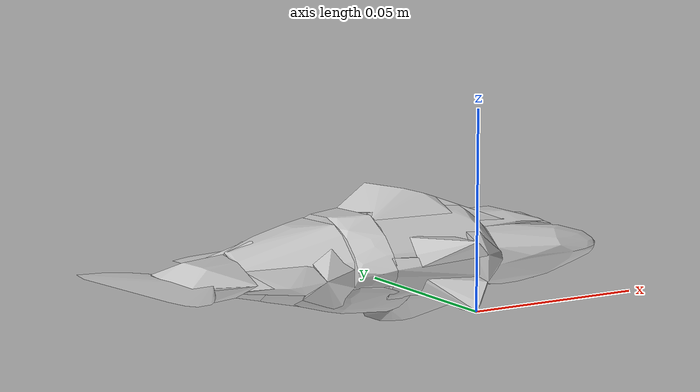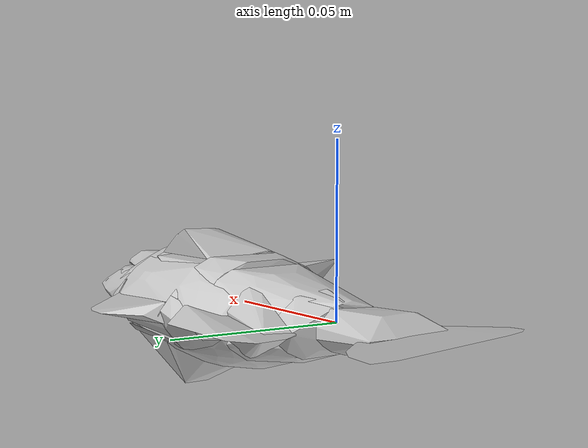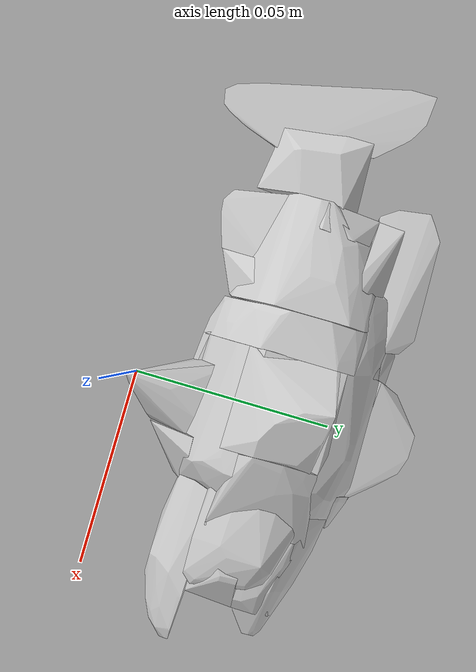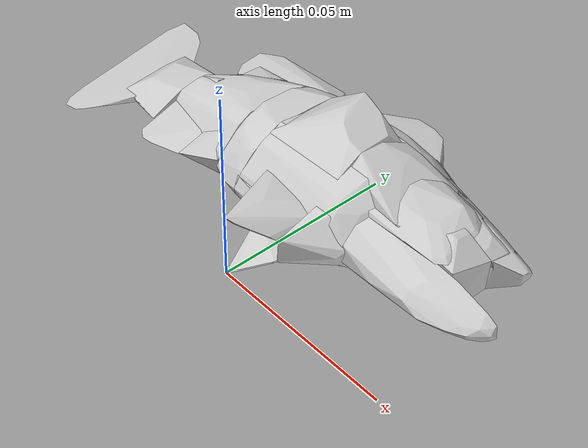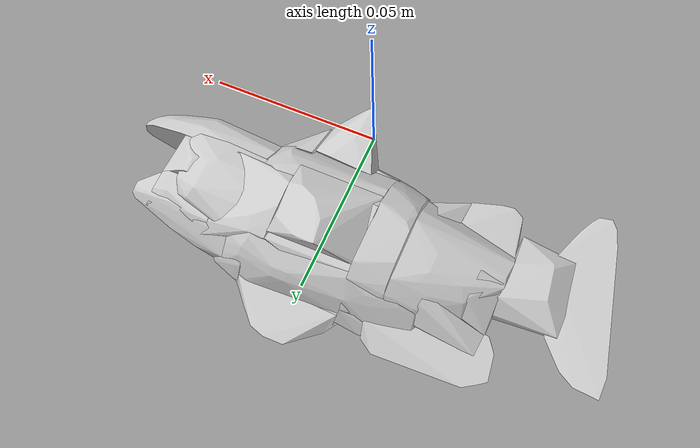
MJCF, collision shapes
<mujoco model="Efd0a302">
  <asset>
  <texture file="/Users/soroushnasiriany/code/robosuite-kitchen/robosuite/models/assets/textures/gray-felt.png" name="tex-Efd0a302" type="2d" />
  <material name="Efd0a302" reflectance="0.5" texrepeat="1 1" texture="tex-Efd0a302" texuniform="false" />
  <mesh file="visual/Efd0a30284addbd75429a46527d69a9a_0.obj" name="Efd0a30284addbd75429a46527d69a9a_0_vis" scale="0.004 0.004 0.004" /><mesh file="visual/Efd0a30284addbd75429a46527d69a9a_1.obj" name="Efd0a30284addbd75429a46527d69a9a_1_vis" scale="0.004 0.004 0.004" /><mesh file="visual/Efd0a30284addbd75429a46527d69a9a_2.obj" name="Efd0a30284addbd75429a46527d69a9a_2_vis" scale="0.004 0.004 0.004" /><mesh file="visual/Efd0a30284addbd75429a46527d69a9a_3.obj" name="Efd0a30284addbd75429a46527d69a9a_3_vis" scale="0.004 0.004 0.004" /><mesh file="visual/Efd0a30284addbd75429a46527d69a9a_4.obj" name="Efd0a30284addbd75429a46527d69a9a_4_vis" scale="0.004 0.004 0.004" /><mesh file="visual/Efd0a30284addbd75429a46527d69a9a_5.obj" name="Efd0a30284addbd75429a46527d69a9a_5_vis" scale="0.004 0.004 0.004" /><mesh file="visual/Efd0a30284addbd75429a46527d69a9a_6.obj" name="Efd0a30284addbd75429a46527d69a9a_6_vis" scale="0.004 0.004 0.004" /><mesh file="visual/Efd0a30284addbd75429a46527d69a9a_7.obj" name="Efd0a30284addbd75429a46527d69a9a_7_vis" scale="0.004 0.004 0.004" /><mesh file="visual/Efd0a30284addbd75429a46527d69a9a_8.obj" name="Efd0a30284addbd75429a46527d69a9a_8_vis" scale="0.004 0.004 0.004" /><mesh file="visual/Efd0a30284addbd75429a46527d69a9a_9.obj" name="Efd0a30284addbd75429a46527d69a9a_9_vis" scale="0.004 0.004 0.004" /><mesh file="visual/Efd0a30284addbd75429a46527d69a9a_10.obj" name="Efd0a30284addbd75429a46527d69a9a_10_vis" scale="0.004 0.004 0.004" /><mesh file="visual/Efd0a30284addbd75429a46527d69a9a_11.obj" name="Efd0a30284addbd75429a46527d69a9a_11_vis" scale="0.004 0.004 0.004" /><mesh file="visual/Efd0a30284addbd75429a46527d69a9a_12.obj" name="Efd0a30284addbd75429a46527d69a9a_12_vis" scale="0.004 0.004 0.004" /><mesh file="collision/efd0a30284addbd75429a46527d69a9a_collision_22.obj" name="efd0a30284addbd75429a46527d69a9a_collision_22._coll" scale="0.004 0.004 0.004" /><mesh file="collision/efd0a30284addbd75429a46527d69a9a_collision_23.obj" name="efd0a30284addbd75429a46527d69a9a_collision_23._coll" scale="0.004 0.004 0.004" /><mesh file="collision/efd0a30284addbd75429a46527d69a9a_collision_21.obj" name="efd0a30284addbd75429a46527d69a9a_collision_21._coll" scale="0.004 0.004 0.004" /><mesh file="collision/efd0a30284addbd75429a46527d69a9a_collision_20.obj" name="efd0a30284addbd75429a46527d69a9a_collision_20._coll" scale="0.004 0.004 0.004" /><mesh file="collision/efd0a30284addbd75429a46527d69a9a_collision_24.obj" name="efd0a30284addbd75429a46527d69a9a_collision_24._coll" scale="0.004 0.004 0.004" /><mesh file="collision/efd0a30284addbd75429a46527d69a9a_collision_30.obj" name="efd0a30284addbd75429a46527d69a9a_collision_30._coll" scale="0.004 0.004 0.004" /><mesh file="collision/efd0a30284addbd75429a46527d69a9a_collision_18.obj" name="efd0a30284addbd75429a46527d69a9a_collision_18._coll" scale="0.004 0.004 0.004" /><mesh file="collision/efd0a30284addbd75429a46527d69a9a_collision_19.obj" name="efd0a30284addbd75429a46527d69a9a_collision_19._coll" scale="0.004 0.004 0.004" /><mesh file="collision/efd0a30284addbd75429a46527d69a9a_collision_31.obj" name="efd0a30284addbd75429a46527d69a9a_collision_31._coll" scale="0.004 0.004 0.004" /><mesh file="collision/efd0a30284addbd75429a46527d69a9a_collision_25.obj" name="efd0a30284addbd75429a46527d69a9a_collision_25._coll" scale="0.004 0.004 0.004" /><mesh file="collision/efd0a30284addbd75429a46527d69a9a_collision_27.obj" name="efd0a30284addbd75429a46527d69a9a_collision_27._coll" scale="0.004 0.004 0.004" /><mesh file="collision/efd0a30284addbd75429a46527d69a9a_collision_26.obj" name="efd0a30284addbd75429a46527d69a9a_collision_26._coll" scale="0.004 0.004 0.004" /><mesh file="collision/efd0a30284addbd75429a46527d69a9a_collision_0.obj" name="efd0a30284addbd75429a46527d69a9a_collision_0._coll" scale="0.004 0.004 0.004" /><mesh file="collision/efd0a30284addbd75429a46527d69a9a_collision_1.obj" name="efd0a30284addbd75429a46527d69a9a_collision_1._coll" scale="0.004 0.004 0.004" /><mesh file="collision/efd0a30284addbd75429a46527d69a9a_collision_3.obj" name="efd0a30284addbd75429a46527d69a9a_collision_3._coll" scale="0.004 0.004 0.004" /><mesh file="collision/efd0a30284addbd75429a46527d69a9a_collision_2.obj" name="efd0a30284addbd75429a46527d69a9a_collision_2._coll" scale="0.004 0.004 0.004" /><mesh file="collision/efd0a30284addbd75429a46527d69a9a_collision_6.obj" name="efd0a30284addbd75429a46527d69a9a_collision_6._coll" scale="0.004 0.004 0.004" /><mesh file="collision/efd0a30284addbd75429a46527d69a9a_collision_7.obj" name="efd0a30284addbd75429a46527d69a9a_collision_7._coll" scale="0.004 0.004 0.004" /><mesh file="collision/efd0a30284addbd75429a46527d69a9a_collision_5.obj" name="efd0a30284addbd75429a46527d69a9a_collision_5._coll" scale="0.004 0.004 0.004" /><mesh file="collision/efd0a30284addbd75429a46527d69a9a_collision_4.obj" name="efd0a30284addbd75429a46527d69a9a_collision_4._coll" scale="0.004 0.004 0.004" /><mesh file="collision/efd0a30284addbd75429a46527d69a9a_collision_9.obj" name="efd0a30284addbd75429a46527d69a9a_collision_9._coll" scale="0.004 0.004 0.004" /><mesh file="collision/efd0a30284addbd75429a46527d69a9a_collision_8.obj" name="efd0a30284addbd75429a46527d69a9a_collision_8._coll" scale="0.004 0.004 0.004" /><mesh file="collision/efd0a30284addbd75429a46527d69a9a_collision_17.obj" name="efd0a30284addbd75429a46527d69a9a_collision_17._coll" scale="0.004 0.004 0.004" /><mesh file="collision/efd0a30284addbd75429a46527d69a9a_collision_16.obj" name="efd0a30284addbd75429a46527d69a9a_collision_16._coll" scale="0.004 0.004 0.004" /><mesh file="collision/efd0a30284addbd75429a46527d69a9a_collision_28.obj" name="efd0a30284addbd75429a46527d69a9a_collision_28._coll" scale="0.004 0.004 0.004" /><mesh file="collision/efd0a30284addbd75429a46527d69a9a_collision_14.obj" name="efd0a30284addbd75429a46527d69a9a_collision_14._coll" scale="0.004 0.004 0.004" /><mesh file="collision/efd0a30284addbd75429a46527d69a9a_collision_15.obj" name="efd0a30284addbd75429a46527d69a9a_collision_15._coll" scale="0.004 0.004 0.004" /><mesh file="collision/efd0a30284addbd75429a46527d69a9a_collision_29.obj" name="efd0a30284addbd75429a46527d69a9a_collision_29._coll" scale="0.004 0.004 0.004" /><mesh file="collision/efd0a30284addbd75429a46527d69a9a_collision_11.obj" name="efd0a30284addbd75429a46527d69a9a_collision_11._coll" scale="0.004 0.004 0.004" /><mesh file="collision/efd0a30284addbd75429a46527d69a9a_collision_10.obj" name="efd0a30284addbd75429a46527d69a9a_collision_10._coll" scale="0.004 0.004 0.004" /><mesh file="collision/efd0a30284addbd75429a46527d69a9a_collision_12.obj" name="efd0a30284addbd75429a46527d69a9a_collision_12._coll" scale="0.004 0.004 0.004" /><mesh file="collision/efd0a30284addbd75429a46527d69a9a_collision_13.obj" name="efd0a30284addbd75429a46527d69a9a_collision_13._coll" scale="0.004 0.004 0.004" /></asset>
  <worldbody>
    <body>
      <body name="object">
      <geom solimp="0.998 0.998 0.001" solref="0.001 1" density="100" friction="0.95 0.3 0.1" type="mesh" mesh="Efd0a30284addbd75429a46527d69a9a_0_vis" quat="0.00000 0.00000 0.70711 0.70711" conaffinity="0" contype="0" group="1" material="Efd0a302" /><geom solimp="0.998 0.998 0.001" solref="0.001 1" density="100" friction="0.95 0.3 0.1" type="mesh" mesh="Efd0a30284addbd75429a46527d69a9a_1_vis" quat="0.00000 0.00000 0.70711 0.70711" conaffinity="0" contype="0" group="1" material="Efd0a302" /><geom solimp="0.998 0.998 0.001" solref="0.001 1" density="100" friction="0.95 0.3 0.1" type="mesh" mesh="Efd0a30284addbd75429a46527d69a9a_2_vis" quat="0.00000 0.00000 0.70711 0.70711" conaffinity="0" contype="0" group="1" material="Efd0a302" /><geom solimp="0.998 0.998 0.001" solref="0.001 1" density="100" friction="0.95 0.3 0.1" type="mesh" mesh="Efd0a30284addbd75429a46527d69a9a_3_vis" quat="0.00000 0.00000 0.70711 0.70711" conaffinity="0" contype="0" group="1" material="Efd0a302" /><geom solimp="0.998 0.998 0.001" solref="0.001 1" density="100" friction="0.95 0.3 0.1" type="mesh" mesh="Efd0a30284addbd75429a46527d69a9a_4_vis" quat="0.00000 0.00000 0.70711 0.70711" conaffinity="0" contype="0" group="1" material="Efd0a302" /><geom solimp="0.998 0.998 0.001" solref="0.001 1" density="100" friction="0.95 0.3 0.1" type="mesh" mesh="Efd0a30284addbd75429a46527d69a9a_5_vis" quat="0.00000 0.00000 0.70711 0.70711" conaffinity="0" contype="0" group="1" material="Efd0a302" /><geom solimp="0.998 0.998 0.001" solref="0.001 1" density="100" friction="0.95 0.3 0.1" type="mesh" mesh="Efd0a30284addbd75429a46527d69a9a_6_vis" quat="0.00000 0.00000 0.70711 0.70711" conaffinity="0" contype="0" group="1" material="Efd0a302" /><geom solimp="0.998 0.998 0.001" solref="0.001 1" density="100" friction="0.95 0.3 0.1" type="mesh" mesh="Efd0a30284addbd75429a46527d69a9a_7_vis" quat="0.00000 0.00000 0.70711 0.70711" conaffinity="0" contype="0" group="1" material="Efd0a302" /><geom solimp="0.998 0.998 0.001" solref="0.001 1" density="100" friction="0.95 0.3 0.1" type="mesh" mesh="Efd0a30284addbd75429a46527d69a9a_8_vis" quat="0.00000 0.00000 0.70711 0.70711" conaffinity="0" contype="0" group="1" material="Efd0a302" /><geom solimp="0.998 0.998 0.001" solref="0.001 1" density="100" friction="0.95 0.3 0.1" type="mesh" mesh="Efd0a30284addbd75429a46527d69a9a_9_vis" quat="0.00000 0.00000 0.70711 0.70711" conaffinity="0" contype="0" group="1" material="Efd0a302" /><geom solimp="0.998 0.998 0.001" solref="0.001 1" density="100" friction="0.95 0.3 0.1" type="mesh" mesh="Efd0a30284addbd75429a46527d69a9a_10_vis" quat="0.00000 0.00000 0.70711 0.70711" conaffinity="0" contype="0" group="1" material="Efd0a302" /><geom solimp="0.998 0.998 0.001" solref="0.001 1" density="100" friction="0.95 0.3 0.1" type="mesh" mesh="Efd0a30284addbd75429a46527d69a9a_11_vis" quat="0.00000 0.00000 0.70711 0.70711" conaffinity="0" contype="0" group="1" material="Efd0a302" /><geom solimp="0.998 0.998 0.001" solref="0.001 1" density="100" friction="0.95 0.3 0.1" type="mesh" mesh="Efd0a30284addbd75429a46527d69a9a_12_vis" quat="0.00000 0.00000 0.70711 0.70711" conaffinity="0" contype="0" group="1" material="Efd0a302" /><geom solimp="0.998 0.998 0.001" solref="0.001 1" density="100" friction="0.95 0.3 0.1" type="mesh" mesh="efd0a30284addbd75429a46527d69a9a_collision_22._coll" quat="0.00000 0.00000 0.70711 0.70711" group="0" rgba="0.8 0.8 0.8 0.0" /><geom solimp="0.998 0.998 0.001" solref="0.001 1" density="100" friction="0.95 0.3 0.1" type="mesh" mesh="efd0a30284addbd75429a46527d69a9a_collision_23._coll" quat="0.00000 0.00000 0.70711 0.70711" group="0" rgba="0.8 0.8 0.8 0.0" /><geom solimp="0.998 0.998 0.001" solref="0.001 1" density="100" friction="0.95 0.3 0.1" type="mesh" mesh="efd0a30284addbd75429a46527d69a9a_collision_21._coll" quat="0.00000 0.00000 0.70711 0.70711" group="0" rgba="0.8 0.8 0.8 0.0" /><geom solimp="0.998 0.998 0.001" solref="0.001 1" density="100" friction="0.95 0.3 0.1" type="mesh" mesh="efd0a30284addbd75429a46527d69a9a_collision_20._coll" quat="0.00000 0.00000 0.70711 0.70711" group="0" rgba="0.8 0.8 0.8 0.0" /><geom solimp="0.998 0.998 0.001" solref="0.001 1" density="100" friction="0.95 0.3 0.1" type="mesh" mesh="efd0a30284addbd75429a46527d69a9a_collision_24._coll" quat="0.00000 0.00000 0.70711 0.70711" group="0" rgba="0.8 0.8 0.8 0.0" /><geom solimp="0.998 0.998 0.001" solref="0.001 1" density="100" friction="0.95 0.3 0.1" type="mesh" mesh="efd0a30284addbd75429a46527d69a9a_collision_30._coll" quat="0.00000 0.00000 0.70711 0.70711" group="0" rgba="0.8 0.8 0.8 0.0" /><geom solimp="0.998 0.998 0.001" solref="0.001 1" density="100" friction="0.95 0.3 0.1" type="mesh" mesh="efd0a30284addbd75429a46527d69a9a_collision_18._coll" quat="0.00000 0.00000 0.70711 0.70711" group="0" rgba="0.8 0.8 0.8 0.0" /><geom solimp="0.998 0.998 0.001" solref="0.001 1" density="100" friction="0.95 0.3 0.1" type="mesh" mesh="efd0a30284addbd75429a46527d69a9a_collision_19._coll" quat="0.00000 0.00000 0.70711 0.70711" group="0" rgba="0.8 0.8 0.8 0.0" /><geom solimp="0.998 0.998 0.001" solref="0.001 1" density="100" friction="0.95 0.3 0.1" type="mesh" mesh="efd0a30284addbd75429a46527d69a9a_collision_31._coll" quat="0.00000 0.00000 0.70711 0.70711" group="0" rgba="0.8 0.8 0.8 0.0" /><geom solimp="0.998 0.998 0.001" solref="0.001 1" density="100" friction="0.95 0.3 0.1" type="mesh" mesh="efd0a30284addbd75429a46527d69a9a_collision_25._coll" quat="0.00000 0.00000 0.70711 0.70711" group="0" rgba="0.8 0.8 0.8 0.0" /><geom solimp="0.998 0.998 0.001" solref="0.001 1" density="100" friction="0.95 0.3 0.1" type="mesh" mesh="efd0a30284addbd75429a46527d69a9a_collision_27._coll" quat="0.00000 0.00000 0.70711 0.70711" group="0" rgba="0.8 0.8 0.8 0.0" /><geom solimp="0.998 0.998 0.001" solref="0.001 1" density="100" friction="0.95 0.3 0.1" type="mesh" mesh="efd0a30284addbd75429a46527d69a9a_collision_26._coll" quat="0.00000 0.00000 0.70711 0.70711" group="0" rgba="0.8 0.8 0.8 0.0" /><geom solimp="0.998 0.998 0.001" solref="0.001 1" density="100" friction="0.95 0.3 0.1" type="mesh" mesh="efd0a30284addbd75429a46527d69a9a_collision_0._coll" quat="0.00000 0.00000 0.70711 0.70711" group="0" rgba="0.8 0.8 0.8 0.0" /><geom solimp="0.998 0.998 0.001" solref="0.001 1" density="100" friction="0.95 0.3 0.1" type="mesh" mesh="efd0a30284addbd75429a46527d69a9a_collision_1._coll" quat="0.00000 0.00000 0.70711 0.70711" group="0" rgba="0.8 0.8 0.8 0.0" /><geom solimp="0.998 0.998 0.001" solref="0.001 1" density="100" friction="0.95 0.3 0.1" type="mesh" mesh="efd0a30284addbd75429a46527d69a9a_collision_3._coll" quat="0.00000 0.00000 0.70711 0.70711" group="0" rgba="0.8 0.8 0.8 0.0" /><geom solimp="0.998 0.998 0.001" solref="0.001 1" density="100" friction="0.95 0.3 0.1" type="mesh" mesh="efd0a30284addbd75429a46527d69a9a_collision_2._coll" quat="0.00000 0.00000 0.70711 0.70711" group="0" rgba="0.8 0.8 0.8 0.0" /><geom solimp="0.998 0.998 0.001" solref="0.001 1" density="100" friction="0.95 0.3 0.1" type="mesh" mesh="efd0a30284addbd75429a46527d69a9a_collision_6._coll" quat="0.00000 0.00000 0.70711 0.70711" group="0" rgba="0.8 0.8 0.8 0.0" /><geom solimp="0.998 0.998 0.001" solref="0.001 1" density="100" friction="0.95 0.3 0.1" type="mesh" mesh="efd0a30284addbd75429a46527d69a9a_collision_7._coll" quat="0.00000 0.00000 0.70711 0.70711" group="0" rgba="0.8 0.8 0.8 0.0" /><geom solimp="0.998 0.998 0.001" solref="0.001 1" density="100" friction="0.95 0.3 0.1" type="mesh" mesh="efd0a30284addbd75429a46527d69a9a_collision_5._coll" quat="0.00000 0.00000 0.70711 0.70711" group="0" rgba="0.8 0.8 0.8 0.0" /><geom solimp="0.998 0.998 0.001" solref="0.001 1" density="100" friction="0.95 0.3 0.1" type="mesh" mesh="efd0a30284addbd75429a46527d69a9a_collision_4._coll" quat="0.00000 0.00000 0.70711 0.70711" group="0" rgba="0.8 0.8 0.8 0.0" /><geom solimp="0.998 0.998 0.001" solref="0.001 1" density="100" friction="0.95 0.3 0.1" type="mesh" mesh="efd0a30284addbd75429a46527d69a9a_collision_9._coll" quat="0.00000 0.00000 0.70711 0.70711" group="0" rgba="0.8 0.8 0.8 0.0" /><geom solimp="0.998 0.998 0.001" solref="0.001 1" density="100" friction="0.95 0.3 0.1" type="mesh" mesh="efd0a30284addbd75429a46527d69a9a_collision_8._coll" quat="0.00000 0.00000 0.70711 0.70711" group="0" rgba="0.8 0.8 0.8 0.0" /><geom solimp="0.998 0.998 0.001" solref="0.001 1" density="100" friction="0.95 0.3 0.1" type="mesh" mesh="efd0a30284addbd75429a46527d69a9a_collision_17._coll" quat="0.00000 0.00000 0.70711 0.70711" group="0" rgba="0.8 0.8 0.8 0.0" /><geom solimp="0.998 0.998 0.001" solref="0.001 1" density="100" friction="0.95 0.3 0.1" type="mesh" mesh="efd0a30284addbd75429a46527d69a9a_collision_16._coll" quat="0.00000 0.00000 0.70711 0.70711" group="0" rgba="0.8 0.8 0.8 0.0" /><geom solimp="0.998 0.998 0.001" solref="0.001 1" density="100" friction="0.95 0.3 0.1" type="mesh" mesh="efd0a30284addbd75429a46527d69a9a_collision_28._coll" quat="0.00000 0.00000 0.70711 0.70711" group="0" rgba="0.8 0.8 0.8 0.0" /><geom solimp="0.998 0.998 0.001" solref="0.001 1" density="100" friction="0.95 0.3 0.1" type="mesh" mesh="efd0a30284addbd75429a46527d69a9a_collision_14._coll" quat="0.00000 0.00000 0.70711 0.70711" group="0" rgba="0.8 0.8 0.8 0.0" /><geom solimp="0.998 0.998 0.001" solref="0.001 1" density="100" friction="0.95 0.3 0.1" type="mesh" mesh="efd0a30284addbd75429a46527d69a9a_collision_15._coll" quat="0.00000 0.00000 0.70711 0.70711" group="0" rgba="0.8 0.8 0.8 0.0" /><geom solimp="0.998 0.998 0.001" solref="0.001 1" density="100" friction="0.95 0.3 0.1" type="mesh" mesh="efd0a30284addbd75429a46527d69a9a_collision_29._coll" quat="0.00000 0.00000 0.70711 0.70711" group="0" rgba="0.8 0.8 0.8 0.0" /><geom solimp="0.998 0.998 0.001" solref="0.001 1" density="100" friction="0.95 0.3 0.1" type="mesh" mesh="efd0a30284addbd75429a46527d69a9a_collision_11._coll" quat="0.00000 0.00000 0.70711 0.70711" group="0" rgba="0.8 0.8 0.8 0.0" /><geom solimp="0.998 0.998 0.001" solref="0.001 1" density="100" friction="0.95 0.3 0.1" type="mesh" mesh="efd0a30284addbd75429a46527d69a9a_collision_10._coll" quat="0.00000 0.00000 0.70711 0.70711" group="0" rgba="0.8 0.8 0.8 0.0" /><geom solimp="0.998 0.998 0.001" solref="0.001 1" density="100" friction="0.95 0.3 0.1" type="mesh" mesh="efd0a30284addbd75429a46527d69a9a_collision_12._coll" quat="0.00000 0.00000 0.70711 0.70711" group="0" rgba="0.8 0.8 0.8 0.0" /><geom solimp="0.998 0.998 0.001" solref="0.001 1" density="100" friction="0.95 0.3 0.1" type="mesh" mesh="efd0a30284addbd75429a46527d69a9a_collision_13._coll" quat="0.00000 0.00000 0.70711 0.70711" group="0" rgba="0.8 0.8 0.8 0.0" /></body>
      <site rgba="0 0 0 0" size="0.005" pos="0.012738313610000003 0.034929401160000005 -0.010292404083999998" name="bottom_site" />
      <site rgba="0 0 0 0" size="0.005" pos="0.012738313610000003 0.034929401160000005 0.027700279236000002" name="top_site" />
      <site rgba="0 0 0 0" size="0.005" pos="0.084378650296 0.06985880279600001 0.008703937576000001" name="horizontal_radius_site" />
    </body>
  </worldbody>
</mujoco>
